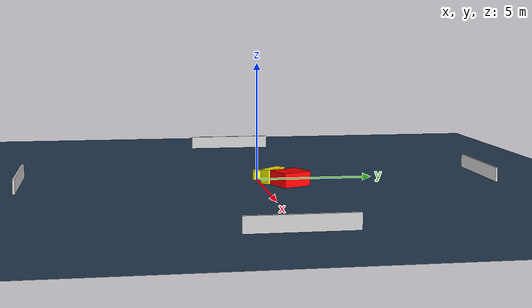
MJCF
<?xml version="1.0" ?>
<mujoco model="generated_environment">
  <option timestep="0.01" integrator="RK4" cone="elliptic"/>
  <default>
    <geom density="1"/>
  </default>
  <asset>
    <texture builtin="gradient" height="3072" name="skybox" rgb1="0.3 0.5 0.7" rgb2="0 0 0" type="skybox" width="512"/>
    <texture builtin="checker" height="300" name="groundplane" rgb1="0.2 0.3 0.4" rgb2="0.1 0.2 0.3" type="2d" width="300"/>
    <material name="groundplane" reflectance="0.2" texrepeat="5 5" texture="groundplane"/>
  </asset>
  <worldbody>
    <light dir="0 0 -1" directional="true" pos="0 0 1.5"/>
    <geom condim="3" friction="0.5 0.005 0.001" material="groundplane" name="floor" pos="0 0 0" size="0 0 0.05" type="plane"/>
    <body name="walls">
      <geom name="wall_1" condim="4" pos="-10.0 0.0 0.3" rgba="0.800000011920929 0.800000011920929 0.800000011920929 1.0" size="0.05 2.0 0.3" type="box"/>
      <geom name="wall_2" condim="4" pos="10.0 0.0 0.3" rgba="0.800000011920929 0.800000011920929 0.800000011920929 1.0" size="0.05 2.0 0.3" type="box"/>
      <geom name="wall_3" condim="4" pos="0.0 -10.0 0.3" rgba="0.800000011920929 0.800000011920929 0.800000011920929 1.0" size="2.0 0.05 0.3" type="box"/>
      <geom name="wall_4" condim="4" pos="0.0 10.0 0.3" rgba="0.800000011920929 0.800000011920929 0.800000011920929 1.0" size="2.0 0.05 0.3" type="box"/>
    </body>
    <body name="robot">
      <joint name="joint_x" type="slide" pos="0 0 0" axis="1 0 0"/>
      <joint name="joint_y" type="slide" pos="0 0 0" axis="0 1 0"/>
      <geom name="robot" type="cylinder" pos="0.0 0.0 0.2" size="0.2 0.2 0.0" mass="5.0" friction="1.0 0.005 0.0001" condim="4" rgba="1.0 1.0 0.0 1.0"/>
    </body>
    <body name="obstacle_1_movable">
      <geom name="obstacle_1_movable" condim="4" pos="0.7574080344455796 0.5488217562755928 0.3" euler="0 0 132.8117826342401" friction="0.0 0.005 0.001" rgba="1.0 1.0 0.0 1.0" size="0.56916032140181 0.20144704387883505 0.3" type="box" mass="0.1"/>
      <joint type="free"/>
    </body>
    <body name="obstacle_2_static">
      <geom name="obstacle_2_static" condim="4" pos="1.5103645220525437 1.1656719078070705 0.3" euler="0 0 114.18105467105059" friction="0.0 0.005 0.001" rgba="1.0 0.0 0.0 1.0" size="0.6380880953313361 0.553277325780117 0.3" type="box"/>
    </body>
  </worldbody>
  <actuator>
    <motor name="actuator_x" joint="joint_x" gear="1" ctrlrange="-1 1"/>
    <motor name="actuator_y" joint="joint_y" gear="1" ctrlrange="-1 1"/>
  </actuator>
</mujoco>
